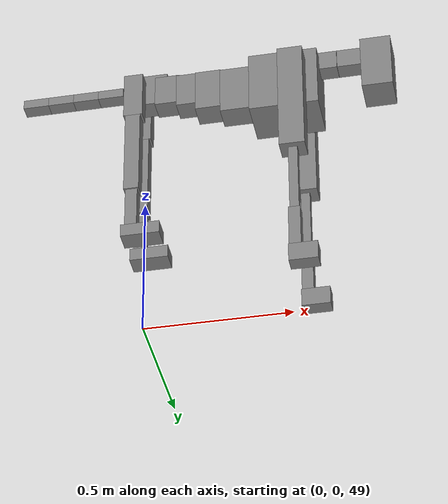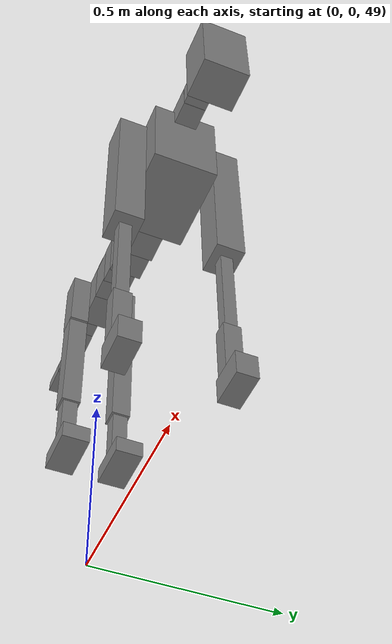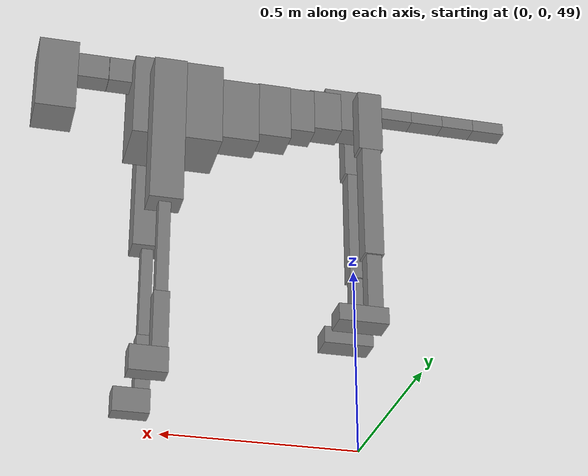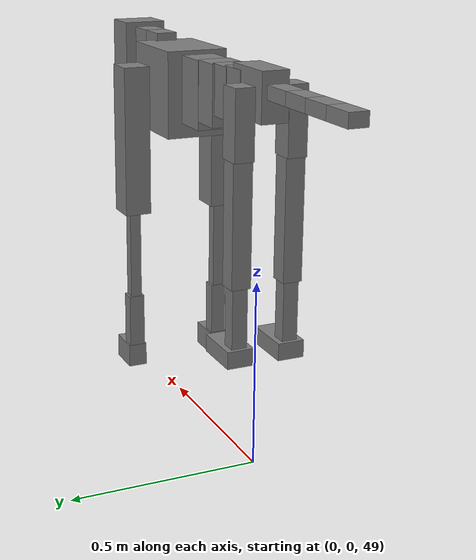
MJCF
<mujoco model="dog">

    <default>
        <joint armature="0.02" stiffness="1" damping="0.2" limited="true"/>
        <geom condim="3" friction="1 0.05 0.05" margin="0.01"/>
        <motor ctrllimited="true" ctrlrange="-1.0 1.0" forcelimited="true" gear="50"/>
    </default>

    <compiler inertiafromgeom="true" angle="radian"/>

    <option timestep="0.016" iterations="50" tolerance="1e-10" solver="Newton" jacobian="dense" cone="pyramidal"/>

    <size nconmax="20000" njmax="60000" nstack="5000000"/>
    <visual>
        <map force="0.1" zfar="30"/>
        <rgba haze="0.15 0.25 0.35 1"/>
        <quality shadowsize="2048"/>
        <global offwidth="800" offheight="800"/>
    </visual>

    <asset>
        <texture type="skybox" builtin="gradient" rgb1="0.3 0.5 0.7" rgb2="0 0 0" width="512" height="512"/>
        <texture name="texplane" type="2d" builtin="checker" rgb1=".2 .3 .4" rgb2=".1 0.15 0.2" width="512" height="512"
                 mark="cross" markrgb=".8 .8 .8"/>
        <texture name="texgeom" type="cube" builtin="flat" mark="cross" width="127" height="1278" rgb1="0.8 0.6 0.4"
                 rgb2="0.8 0.6 0.4" markrgb="1 1 1" random="0.01"/>

        <material name="matplane" reflectance="0.3" texture="texplane" texrepeat="1 1" texuniform="true"/>
        <material name="matgeom" texture="texgeom" texuniform="true" rgba="0.8 0.6 .4 1"/>
    </asset>

    <worldbody>
        <geom name="floor" pos="0 0 0" size="0 0 .25" type="plane" material="matplane" condim="3"/>

        <light directional="false" diffuse=".2 .2 .2" specular="0 0 0" pos="0 0 5" dir="0 0 -1" castshadow="false"/>
        <light mode="targetbodycom" target="torso" directional="false" diffuse=".8 .8 .8" specular="0.3 0.3 0.3"
               pos="0 0 4.0" dir="0 0 -1"/>

        <body name="root" pos="0 0 50">
            <freejoint name="root_1"/>
            <geom type="box" pos="0 0 -0.02" size="0.0774  0.0358  0.063" density="2030"/>

            <body name="spine1" pos="0.054 0 0">
                <joint name="spine1_y" axis="0 1 0" range="0 0.7" limited="true"/>
                <geom type="box" pos="0.02375 0 -0.03" size="0.04375  0.0375  0.05985" density="2030"/>

                <body name="spine2" pos="0.0612 0 0">
                    <joint name="spine2_y" axis="0 1 0" range="-0.15 0.15" limited="true"/>
                    <geom type="box" pos="0.03555  0  -0.04" size="0.04055  0.039  0.06615" density="2030"/>

                    <body name="spine3" pos="0.0730 0 0">
                        <joint name="spine3_y" axis="0 1 0" range="-0.15 0.15" limited="true"/>
                        <geom type="box" pos="0.03555  0  -0.057" size="0.04555  0.0445  0.081" density="2030"/>

                        <body name="spine4" pos="0.0780 0 0">
                            <joint name="spine4_y" axis="0 1 0" range="-0.15 0.15" limited="true"/>
                            <geom type="box" pos="0.05265  0  -0.07" size="0.05265  0.045  0.09135" density="2030"/>

                            <body name="torso" pos="0.1082 0 0">
                                <joint name="torso_y" axis="0 1 0" range="-0.15 0.15" limited="true"/>
                                <geom type="box" pos="0.11925  0  -0.085" size="0.11925  0.085  0.11745"
                                      density="2030"/>

                                <body name="neck1" pos="0.2160  0   0.0180">
                                    <joint name="neck1_y" axis="0 1 0" range="-1.2  -1" limited="true"/>
                                    <geom type="box" pos="0.0423  0  0" size="0.0423  0.03  0.036" density="2325"/>

                                    <body name="neck2" pos="0.0853  0  0">
                                        <joint name="neck2_y" axis="0 1 0" range="0.1  0" limited="true"/>
                                        <geom type="box" pos="0.0423  0  0" size="0.0423  0.03  0.036" density="2325"/>

                                        <body name="head" pos="0.0853  0  0">
                                            <joint name="head_y" axis="0 1 0" range="-0.3  -0.2" limited="true"/>
                                            <geom type="box" pos="0.0531  0  -0.055" size="0.0531  0.06  0.1044"
                                                  density="4030"/>

                                        </body>
                                    </body>
                                </body>

                                <body name="front_shoulder" pos="0.156  0   -0.0480">
                                    <joint name="front_shoulder_y" axis="0 1 0" range="-1 1.5" limited="true"/>
                                    <geom type="box" pos="0 0.13 -0.1816" size="0.0432  0.0369  0.2083" density="1158"/>
                                    <geom type="box" pos="0 -0.13 -0.1816" size="0.0432  0.0369  0.2083"
                                          density="1158"/>

                                    <body name="front_elbow" pos="0  0  -0.3633">
                                        <joint name="front_elbow_y" axis="0 1 0" range="-2 0" limited="true"/>
                                        <geom type="box" pos="0 0.13 -0.1460" size="0.0156  0.0159  0.1460"
                                              density="1081"/>
                                        <geom type="box" pos="0 -0.13 -0.1460" size="0.0156  0.0159  0.1460"
                                              density="1081"/>

                                        <body name="front_wrist" pos="0  0  -0.2920">
                                            <joint name="front_wrist_y" axis="0 1 0" range="-0.2 0" limited="true"/>
                                            <geom type="box" pos="0 0.13 -0.0759" size="0.0199  0.0221  0.0891"
                                                  density="1664"/>
                                            <geom type="box" pos="0 -0.13 -0.0759" size="0.0199  0.0221  0.0891"
                                                  density="1664"/>

                                            <body name="front_finger_end" pos="0  0  -0.1519">
                                                <joint name="front_finger_y" axis="0 1 0" range="-0.4 1"
                                                       limited="true"/>
                                                <geom type="box" pos="0.0264  0.13  -0.0178"
                                                      size="0.0483  0.0264  0.0328" density="1515"/>
                                                <geom type="box" pos="0.0264  -0.13  -0.0178"
                                                      size="0.0483  0.0264  0.0328" density="1515"/>

                                            </body>

                                        </body>
                                    </body>
                                </body>

                            </body>
                        </body>
                    </body>
                </body>
            </body>

            <body name="back_hip" pos="-0.03 0 -0.018">
                <joint name="back_hip_y" axis="0 1 0" range="-1.5 0.3" limited="true"/>
                <geom type="box" pos="0 0.07 -0.0661" size="0.0329  0.0258  0.0889" density="1154"/>
                <geom type="box" pos="0 -0.07 -0.0661" size="0.0329  0.0258  0.0889" density="1154"/>

                <body name="back_knee" pos="0  0  -0.1322">
                    <joint name="back_knee_y" axis="0 1 0" range="0 2.8" limited="true"/>
                    <geom type="box" pos="0 0.07 -0.1622" size="0.0260  0.0257  0.1778" density="1227"/>
                    <geom type="box" pos="0 -0.07 -0.1622" size="0.0260  0.0257  0.1778" density="1227"/>

                    <body name="back_ankle" pos="0  0  -0.3245">
                        <joint name="back_ankle_y" axis="0 1 0" range="-2.2 0" limited="true"/>
                        <geom type="box" pos="0 0.07 -0.0938" size="0.0205  0.0205  0.1050" density="1284"/>
                        <geom type="box" pos="0 -0.07 -0.0938" size="0.0205  0.0205  0.1050" density="1284"/>

                        <body name="back_toe_end" pos="0  0  -0.1876">
                            <joint name="back_toe_y" axis="0 1 0" range="-0.4 1" limited="true"/>
                            <geom type="box" pos="0.0358  0.07  -0.0079" size="0.0657  0.0358  0.0229" density="1515"/>
                            <geom type="box" pos="0.0358  -0.07  -0.0079" size="0.0657  0.0358  0.0229" density="1515"/>

                        </body>
                    </body>
                </body>
            </body>

            <body name="tail1" pos="-0.074 0 -0.006">
                <joint name="tail1_y" axis="0 1 0" range="-0.2 0.2" limited="true"/>
                <geom type="box" pos="-0.0536  0  0" size="0.045  0.025  0.0175" density="1587"/>

                <body name="tail2" pos="-0.09 0 0">
                    <joint name="tail2_y" axis="0 1 0" range="-0.2 0.2" limited="true"/>
                    <geom type="box" pos="-0.0536  0  0" size="0.045  0.025  0.0175" density="1587"/>

                    <body name="tail3" pos="-0.09 0 0">
                        <joint name="tail3_y" axis="0 1 0" range="-0.2 0.2" limited="true"/>
                        <geom type="box" pos="-0.0536  0  0" size="0.045  0.025  0.0175" density="1587"/>

                        <body name="tail4" pos="-0.09 0 0">
                            <joint name="tail4_y" axis="0 1 0" range="-0.2 0.2" limited="true"/>
                            <geom type="box" pos="-0.0536  0  0" size="0.045  0.025  0.0175" density="1587"/>

                        </body>
                    </body>
                </body>
            </body>
        </body>
    </worldbody>

    <actuator>
        <motor joint="spine1_y" forcerange="-150 150     "/>
        <motor joint="spine2_y" forcerange="-150 150     "/>
        <motor joint="spine3_y" forcerange="-150 150     "/>
        <motor joint="spine4_y" forcerange="-150 150     "/>
        <motor joint="torso_y" forcerange="-150 150     "/>
        <motor joint="neck1_y" forcerange="-100 100       "/>
        <motor joint="neck2_y" forcerange="-100 100       "/>
        <motor joint="head_y" forcerange="-150 150       "/>
        <motor joint="front_shoulder_y" forcerange="-171.20 174.78"/>
        <motor joint="front_elbow_y" forcerange="-102.82 113.07"/>
        <motor joint="front_wrist_y" forcerange="-65.44 111.24"/>
        <motor joint="front_finger_y" forcerange="-68.20 32.44"/>
        <motor joint="back_hip_y" forcerange="-278.98 265.07"/>
        <motor joint="back_knee_y" forcerange="-216.19 357.08"/>
        <motor joint="back_angle_y" forcerange="-56.13 172.59"/>
        <motor joint="back_toe_y" forcerange="-82.30 124.42"/>
        <motor joint="tail1_y" forcerange="-50 50     "/>
        <motor joint="tail2_y" forcerange="-50 50     "/>
        <motor joint="tail3_y" forcerange="-50 50     "/>
        <motor joint="tail4_y" forcerange="-50 50     "/>
    </actuator>
</mujoco>
